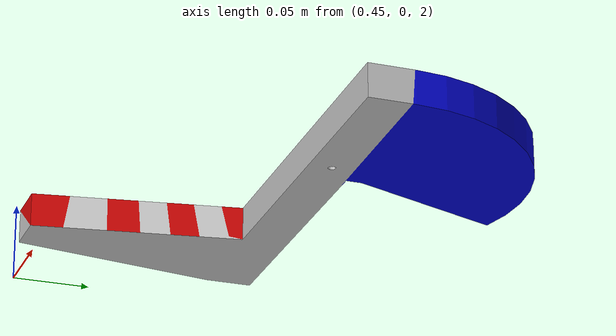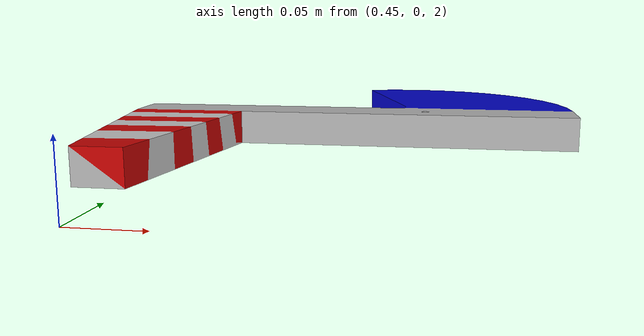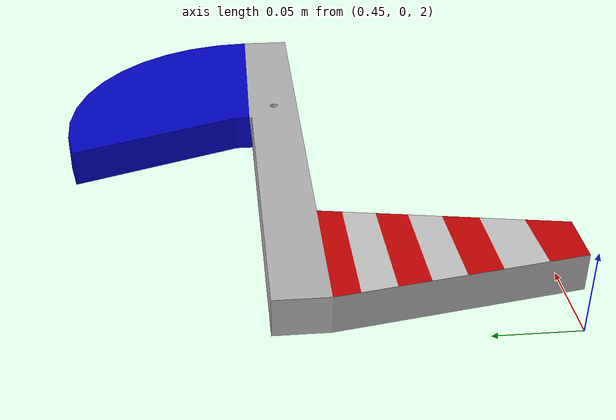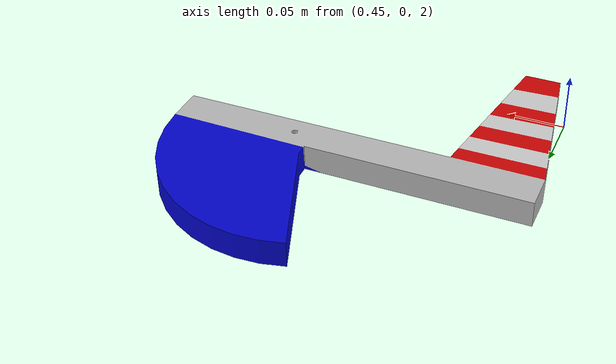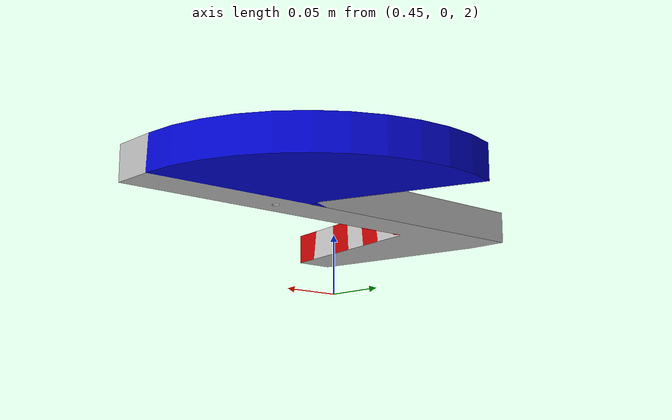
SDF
<?xml version="1.0" ?>
<sdf version="1.5">
  <model name="manchon_bleu">
    <static>true</static>
    <link name="link">
      <collision name="manchon_bleu">
        <pose>0 0 0 0 0 0</pose>
        <geometry>
          <mesh>
            <uri>model://manchon_bleu/manchon_bleu.dae</uri>
            <scale>1.0 1.0 1.0</scale>
          </mesh>
        </geometry>
      </collision>

      <visual name="rock">
        <cast_shadows>true</cast_shadows>
        <pose>0 0 0 0 0 0</pose>
        <geometry>
          <mesh>
            <uri>model://manchon_bleu/manchon_bleu.dae</uri>
            <scale>1.0 1.0 1.0</scale>
          </mesh>
        </geometry>

      </visual>
    </link>
  </model>
</sdf>
